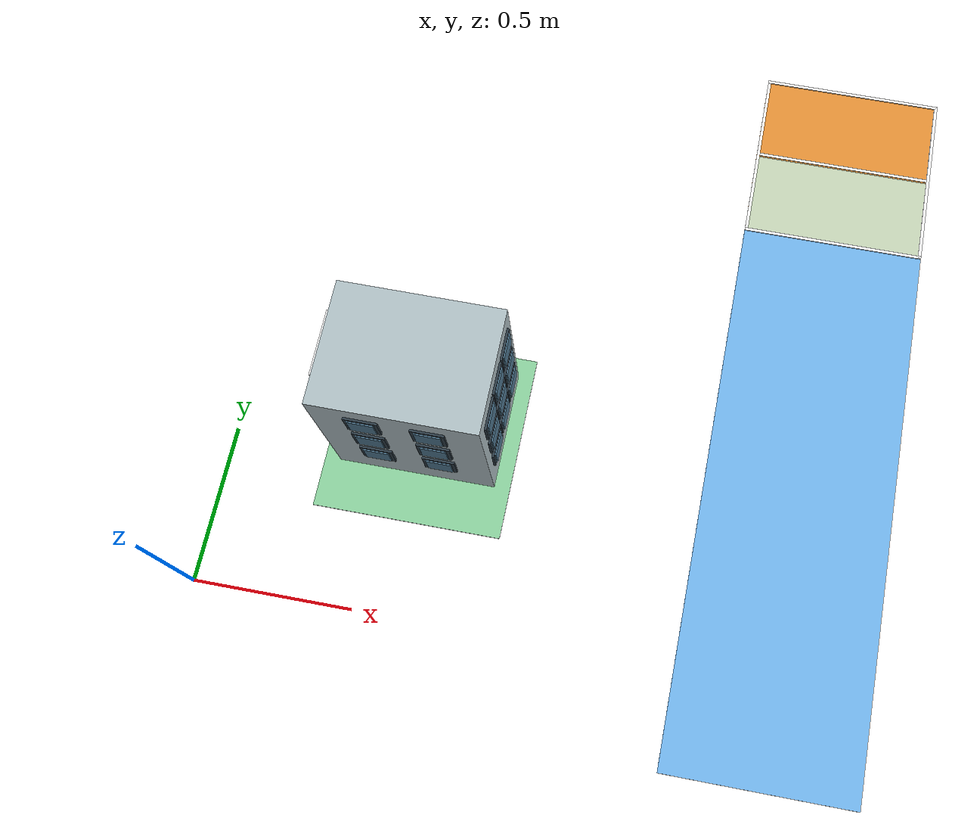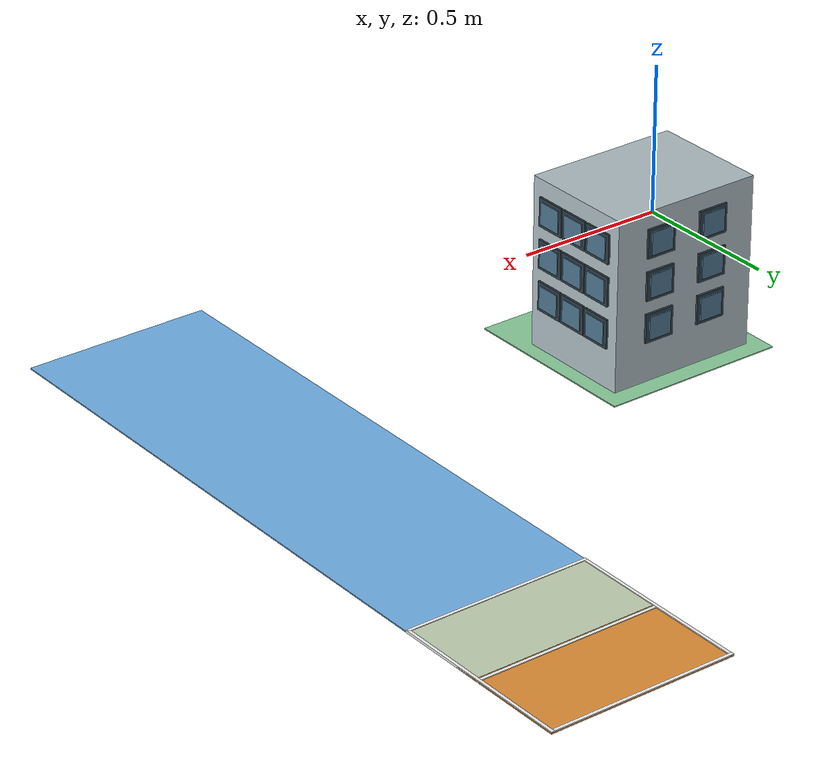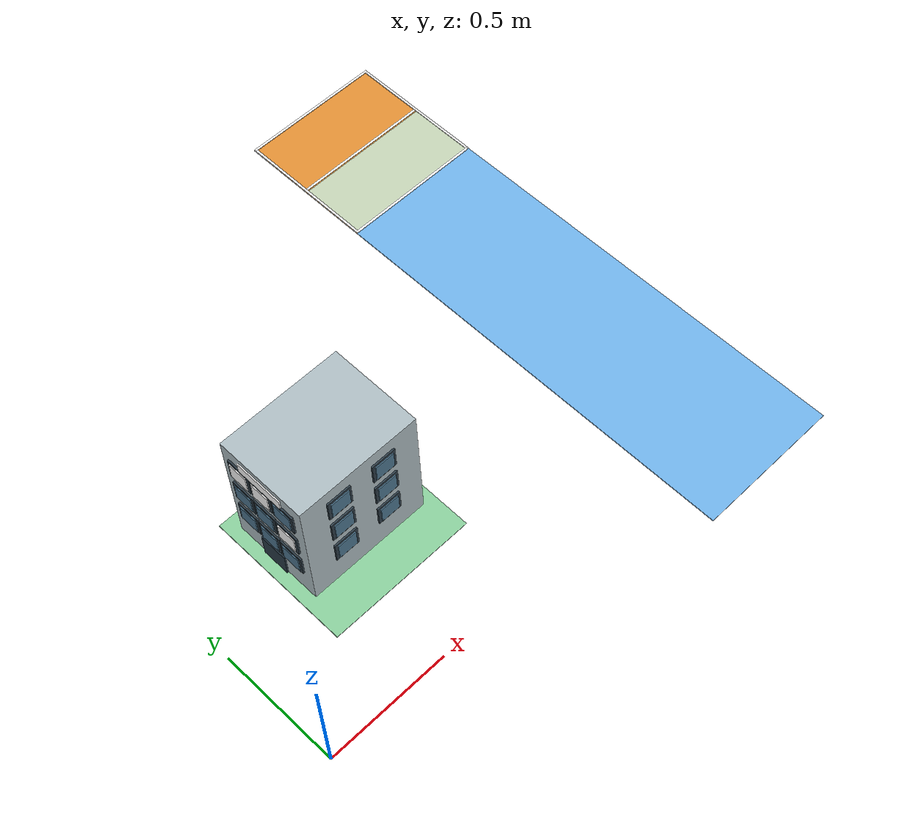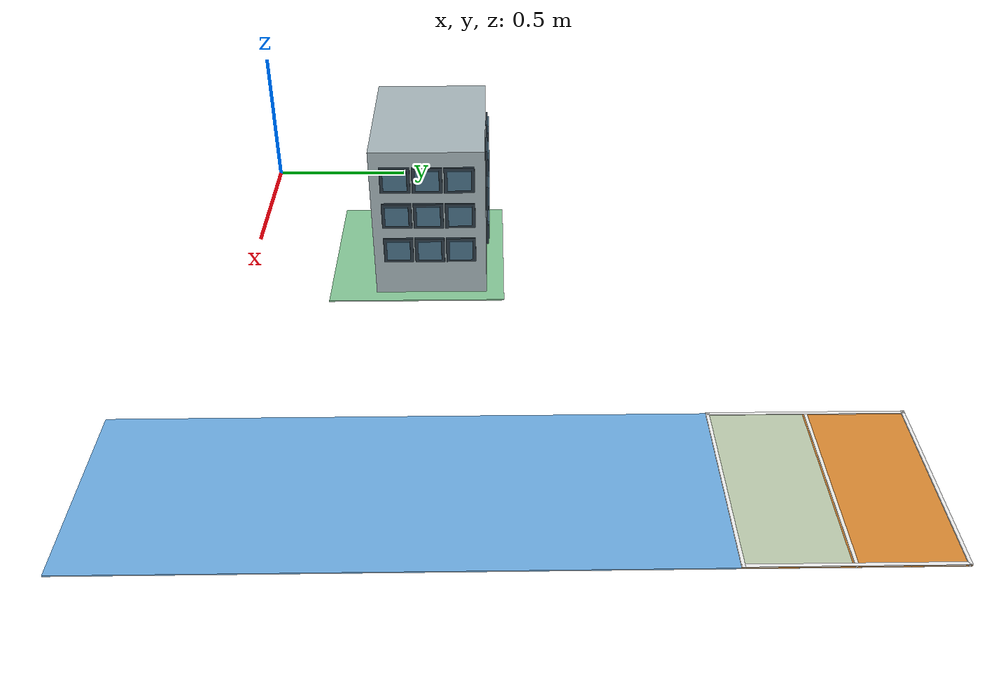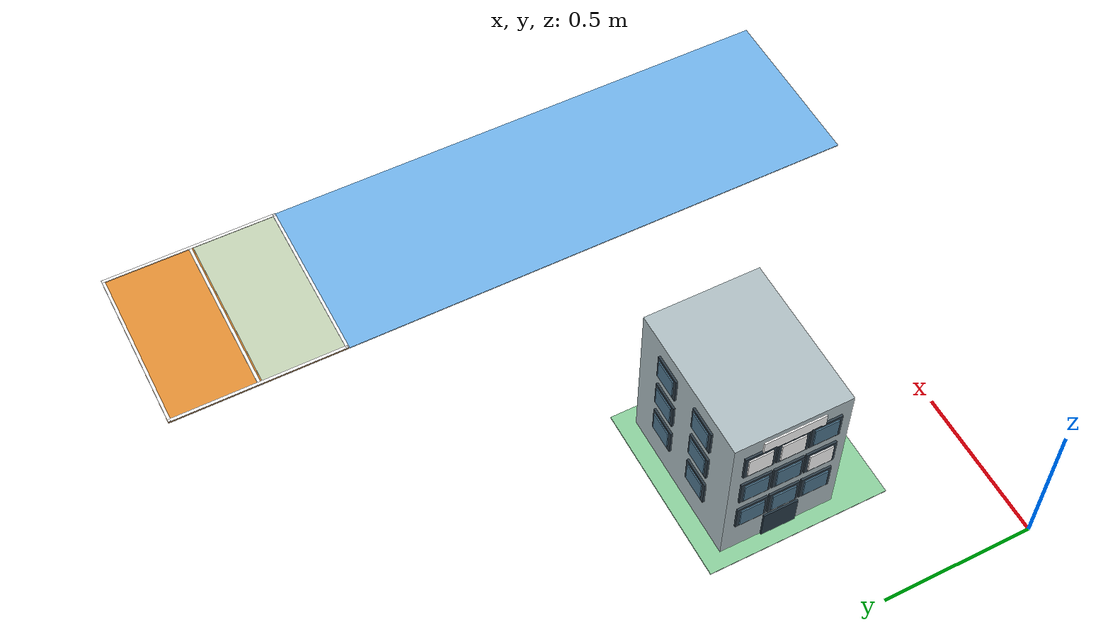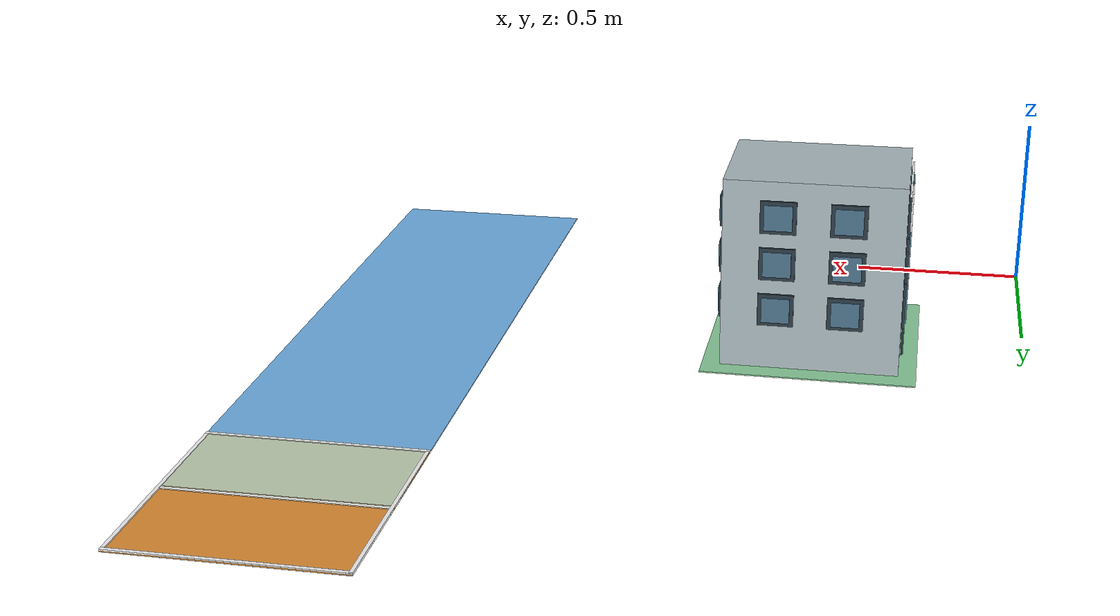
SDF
<sdf version="1.6">
 <world name="sq_community_4p2">
  <include><uri>model://sun</uri></include>
  <model name="sq4_zone_start_finish">
   <static>true</static>
   <pose>1.8000 1.8000 0.0000 0 0 0.00000</pose>
   <link name="surface">
    <visual name="surface_vis">
     <pose>0.0000 0.0000 0.0018 0 0 0.00000</pose>
     <geometry><box><size>0.6000 0.6000 0.0035</size></box></geometry>
     <material>
      <ambient>0.9000 0.5700 0.2100 1.0000</ambient>
      <diffuse>0.9000 0.5700 0.2100 1.0000</diffuse>
     </material>
    </visual>
   </link>
  </model>
  <model name="sq4_zone_building_A">
   <static>true</static>
   <pose>0.6000 0.6000 0.0000 0 0 0.00000</pose>
   <link name="surface">
    <visual name="surface_vis">
     <pose>0.0000 0.0000 0.0018 0 0 0.00000</pose>
     <geometry><box><size>0.6000 0.6000 0.0035</size></box></geometry>
     <material>
      <ambient>0.5500 0.8200 0.6200 1.0000</ambient>
      <diffuse>0.5500 0.8200 0.6200 1.0000</diffuse>
     </material>
    </visual>
   </link>
  </model>
  <model name="sq4_zone_ebike_parking">
   <static>true</static>
   <pose>1.8000 0.6000 0.0000 0 0 0.00000</pose>
   <link name="surface">
    <visual name="surface_vis">
     <pose>0.0000 0.0000 0.0018 0 0 0.00000</pose>
     <geometry><box><size>0.6000 1.8000 0.0035</size></box></geometry>
     <material>
      <ambient>0.4500 0.7100 0.9300 1.0000</ambient>
      <diffuse>0.4500 0.7100 0.9300 1.0000</diffuse>
     </material>
    </visual>
   </link>
  </model>
  <model name="sq4_start_outline_0">
   <static>true</static>
   <pose>1.8000 1.5050 0.0000 0 0 0.00000</pose>
   <link name="surface">
    <visual name="surface_vis">
     <pose>0.0000 0.0000 0.0035 0 0 0.00000</pose>
     <geometry><box><size>0.6000 0.0100 0.0070</size></box></geometry>
     <material>
      <ambient>0.9900 0.9900 0.9900 1.0000</ambient>
      <diffuse>0.9900 0.9900 0.9900 1.0000</diffuse>
     </material>
    </visual>
   </link>
  </model>
  <model name="sq4_start_outline_1">
   <static>true</static>
   <pose>1.8000 2.0950 0.0000 0 0 0.00000</pose>
   <link name="surface">
    <visual name="surface_vis">
     <pose>0.0000 0.0000 0.0035 0 0 0.00000</pose>
     <geometry><box><size>0.6000 0.0100 0.0070</size></box></geometry>
     <material>
      <ambient>0.9900 0.9900 0.9900 1.0000</ambient>
      <diffuse>0.9900 0.9900 0.9900 1.0000</diffuse>
     </material>
    </visual>
   </link>
  </model>
  <model name="sq4_start_outline_2">
   <static>true</static>
   <pose>1.5050 1.8000 0.0000 0 0 0.00000</pose>
   <link name="surface">
    <visual name="surface_vis">
     <pose>0.0000 0.0000 0.0035 0 0 0.00000</pose>
     <geometry><box><size>0.0100 0.6000 0.0070</size></box></geometry>
     <material>
      <ambient>0.9900 0.9900 0.9900 1.0000</ambient>
      <diffuse>0.9900 0.9900 0.9900 1.0000</diffuse>
     </material>
    </visual>
   </link>
  </model>
  <model name="sq4_start_outline_3">
   <static>true</static>
   <pose>2.0950 1.8000 0.0000 0 0 0.00000</pose>
   <link name="surface">
    <visual name="surface_vis">
     <pose>0.0000 0.0000 0.0035 0 0 0.00000</pose>
     <geometry><box><size>0.0100 0.6000 0.0070</size></box></geometry>
     <material>
      <ambient>0.9900 0.9900 0.9900 1.0000</ambient>
      <diffuse>0.9900 0.9900 0.9900 1.0000</diffuse>
     </material>
    </visual>
   </link>
  </model>
  <model name="sq4_start_finish_divider">
   <static>true</static>
   <pose>1.8000 1.8000 0.0000 0 0 0.00000</pose>
   <link name="surface">
    <visual name="surface_vis">
     <pose>0.0000 0.0000 0.0030 0 0 0.00000</pose>
     <geometry><box><size>0.6000 0.0100 0.0060</size></box></geometry>
     <material>
      <ambient>0.9800 0.9800 0.9600 1.0000</ambient>
      <diffuse>0.9800 0.9800 0.9600 1.0000</diffuse>
     </material>
    </visual>
   </link>
  </model>
  <model name="sq4_finish_half">
   <static>true</static>
   <pose>1.8000 1.6500 0.0000 0 0 0.00000</pose>
   <link name="surface">
    <visual name="surface_vis">
     <pose>0.0000 0.0000 0.0025 0 0 0.00000</pose>
     <geometry><box><size>0.5800 0.2800 0.0050</size></box></geometry>
     <material>
      <ambient>0.7800 0.8400 0.7200 1.0000</ambient>
      <diffuse>0.7800 0.8400 0.7200 1.0000</diffuse>
     </material>
    </visual>
   </link>
  </model>
  <model name="sq4_building_A">
   <static>true</static>
   <pose>0.6000 0.6500 0.0000 0 0 0.00000</pose>
   <link name="structure">
    <visual name="structure_vis">
     <pose>0.0000 0.0000 0.2750 0 0 0.00000</pose>
     <geometry><box><size>0.5000 0.3800 0.5500</size></box></geometry>
     <material>
      <ambient>0.6900 0.7500 0.7700 1.0000</ambient>
      <diffuse>0.6900 0.7500 0.7700 1.0000</diffuse>
     </material>
    </visual>
    <collision name="structure_col">
     <pose>0.0000 0.0000 0.2750 0 0 0.00000</pose>
     <geometry><box><size>0.5000 0.3800 0.5500</size></box></geometry>
    </collision>
   </link>
   <link name="nameplate">
    <visual name="nameplate_vis">
     <pose>-0.2560 0.0000 0.5150 0 0 0.00000</pose>
     <geometry><box><size>0.0050 0.2000 0.0450</size></box></geometry>
     <material>
      <script>
       <uri>model://sq_textures/materials/scripts</uri>
       <uri>model://sq_textures/materials/textures</uri>
       <name>SQ_bldg_A</name>
      </script>
      <ambient>1 1 1 1</ambient>
      <diffuse>1 1 1 1</diffuse>
     </material>
    </visual>
   </link>
   <link name="entry_door">
    <visual name="entry_door_vis">
     <pose>-0.2560 0.0000 0.0630 0 0 0.00000</pose>
     <geometry><box><size>0.0060 0.1150 0.1050</size></box></geometry>
     <material>
      <ambient>0.1600 0.2300 0.2800 1.0000</ambient>
      <diffuse>0.1600 0.2300 0.2800 1.0000</diffuse>
     </material>
    </visual>
   </link>
   <link name="window_f1_c1_frame">
    <visual name="window_f1_c1_frame_vis">
     <pose>-0.2550 -0.1056 0.1800 0 0 0.00000</pose>
     <geometry><box><size>0.0070 0.1000 0.0930</size></box></geometry>
     <material>
      <ambient>0.1800 0.2400 0.2800 1.0000</ambient>
      <diffuse>0.1800 0.2400 0.2800 1.0000</diffuse>
     </material>
    </visual>
   </link>
   <link name="window_f1_c1_glass">
    <visual name="window_f1_c1_glass_vis">
     <pose>-0.2590 -0.1056 0.1800 0 0 0.00000</pose>
     <geometry><box><size>0.0070 0.0780 0.0720</size></box></geometry>
     <material>
      <ambient>0.3100 0.4700 0.5700 1.0000</ambient>
      <diffuse>0.3100 0.4700 0.5700 1.0000</diffuse>
     </material>
    </visual>
   </link>
   <link name="window_f1_c2_frame">
    <visual name="window_f1_c2_frame_vis">
     <pose>-0.2550 0.0000 0.1800 0 0 0.00000</pose>
     <geometry><box><size>0.0070 0.1000 0.0930</size></box></geometry>
     <material>
      <ambient>0.1800 0.2400 0.2800 1.0000</ambient>
      <diffuse>0.1800 0.2400 0.2800 1.0000</diffuse>
     </material>
    </visual>
   </link>
   <link name="window_f1_c2_glass">
    <visual name="window_f1_c2_glass_vis">
     <pose>-0.2590 0.0000 0.1800 0 0 0.00000</pose>
     <geometry><box><size>0.0070 0.0780 0.0720</size></box></geometry>
     <material>
      <ambient>0.3100 0.4700 0.5700 1.0000</ambient>
      <diffuse>0.3100 0.4700 0.5700 1.0000</diffuse>
     </material>
    </visual>
   </link>
   <link name="window_f1_c3_frame">
    <visual name="window_f1_c3_frame_vis">
     <pose>-0.2550 0.1056 0.1800 0 0 0.00000</pose>
     <geometry><box><size>0.0070 0.1000 0.0930</size></box></geometry>
     <material>
      <ambient>0.1800 0.2400 0.2800 1.0000</ambient>
      <diffuse>0.1800 0.2400 0.2800 1.0000</diffuse>
     </material>
    </visual>
   </link>
   <link name="window_f1_c3_glass">
    <visual name="window_f1_c3_glass_vis">
     <pose>-0.2590 0.1056 0.1800 0 0 0.00000</pose>
     <geometry><box><size>0.0070 0.0780 0.0720</size></box></geometry>
     <material>
      <ambient>0.3100 0.4700 0.5700 1.0000</ambient>
      <diffuse>0.3100 0.4700 0.5700 1.0000</diffuse>
     </material>
    </visual>
   </link>
   <link name="window_f2_c1_frame">
    <visual name="window_f2_c1_frame_vis">
     <pose>-0.2550 -0.1056 0.3150 0 0 0.00000</pose>
     <geometry><box><size>0.0070 0.1000 0.0930</size></box></geometry>
     <material>
      <ambient>0.1800 0.2400 0.2800 1.0000</ambient>
      <diffuse>0.1800 0.2400 0.2800 1.0000</diffuse>
     </material>
    </visual>
   </link>
   <link name="window_f2_c1_glass">
    <visual name="window_f2_c1_glass_vis">
     <pose>-0.2590 -0.1056 0.3150 0 0 0.00000</pose>
     <geometry><box><size>0.0070 0.0780 0.0720</size></box></geometry>
     <material>
      <script>
       <uri>model://sq_textures/materials/scripts</uri>
       <uri>model://sq_textures/materials/textures</uri>
       <name>SQ_win_fire</name>
      </script>
      <ambient>1 1 1 1</ambient>
      <diffuse>1 1 1 1</diffuse>
     </material>
    </visual>
   </link>
   <link name="window_f2_c2_frame">
    <visual name="window_f2_c2_frame_vis">
     <pose>-0.2550 0.0000 0.3150 0 0 0.00000</pose>
     <geometry><box><size>0.0070 0.1000 0.0930</size></box></geometry>
     <material>
      <ambient>0.1800 0.2400 0.2800 1.0000</ambient>
      <diffuse>0.1800 0.2400 0.2800 1.0000</diffuse>
     </material>
    </visual>
   </link>
   <link name="window_f2_c2_glass">
    <visual name="window_f2_c2_glass_vis">
     <pose>-0.2590 0.0000 0.3150 0 0 0.00000</pose>
     <geometry><box><size>0.0070 0.0780 0.0720</size></box></geometry>
     <material>
      <ambient>0.3100 0.4700 0.5700 1.0000</ambient>
      <diffuse>0.3100 0.4700 0.5700 1.0000</diffuse>
     </material>
    </visual>
   </link>
   <link name="window_f2_c3_frame">
    <visual name="window_f2_c3_frame_vis">
     <pose>-0.2550 0.1056 0.3150 0 0 0.00000</pose>
     <geometry><box><size>0.0070 0.1000 0.0930</size></box></geometry>
     <material>
      <ambient>0.1800 0.2400 0.2800 1.0000</ambient>
      <diffuse>0.1800 0.2400 0.2800 1.0000</diffuse>
     </material>
    </visual>
   </link>
   <link name="window_f2_c3_glass">
    <visual name="window_f2_c3_glass_vis">
     <pose>-0.2590 0.1056 0.3150 0 0 0.00000</pose>
     <geometry><box><size>0.0070 0.0780 0.0720</size></box></geometry>
     <material>
      <ambient>0.3100 0.4700 0.5700 1.0000</ambient>
      <diffuse>0.3100 0.4700 0.5700 1.0000</diffuse>
     </material>
    </visual>
   </link>
   <link name="window_f3_c1_frame">
    <visual name="window_f3_c1_frame_vis">
     <pose>-0.2550 -0.1056 0.4500 0 0 0.00000</pose>
     <geometry><box><size>0.0070 0.1000 0.0930</size></box></geometry>
     <material>
      <ambient>0.1800 0.2400 0.2800 1.0000</ambient>
      <diffuse>0.1800 0.2400 0.2800 1.0000</diffuse>
     </material>
    </visual>
   </link>
   <link name="window_f3_c1_glass">
    <visual name="window_f3_c1_glass_vis">
     <pose>-0.2590 -0.1056 0.4500 0 0 0.00000</pose>
     <geometry><box><size>0.0070 0.0780 0.0720</size></box></geometry>
     <material>
      <ambient>0.3100 0.4700 0.5700 1.0000</ambient>
      <diffuse>0.3100 0.4700 0.5700 1.0000</diffuse>
     </material>
    </visual>
   </link>
   <link name="window_f3_c2_frame">
    <visual name="window_f3_c2_frame_vis">
     <pose>-0.2550 0.0000 0.4500 0 0 0.00000</pose>
     <geometry><box><size>0.0070 0.1000 0.0930</size></box></geometry>
     <material>
      <ambient>0.1800 0.2400 0.2800 1.0000</ambient>
      <diffuse>0.1800 0.2400 0.2800 1.0000</diffuse>
     </material>
    </visual>
   </link>
   <link name="window_f3_c2_glass">
    <visual name="window_f3_c2_glass_vis">
     <pose>-0.2590 0.0000 0.4500 0 0 0.00000</pose>
     <geometry><box><size>0.0070 0.0780 0.0720</size></box></geometry>
     <material>
      <script>
       <uri>model://sq_textures/materials/scripts</uri>
       <uri>model://sq_textures/materials/textures</uri>
       <name>SQ_win_fire</name>
      </script>
      <ambient>1 1 1 1</ambient>
      <diffuse>1 1 1 1</diffuse>
     </material>
    </visual>
   </link>
   <link name="window_f3_c3_frame">
    <visual name="window_f3_c3_frame_vis">
     <pose>-0.2550 0.1056 0.4500 0 0 0.00000</pose>
     <geometry><box><size>0.0070 0.1000 0.0930</size></box></geometry>
     <material>
      <ambient>0.1800 0.2400 0.2800 1.0000</ambient>
      <diffuse>0.1800 0.2400 0.2800 1.0000</diffuse>
     </material>
    </visual>
   </link>
   <link name="window_f3_c3_glass">
    <visual name="window_f3_c3_glass_vis">
     <pose>-0.2590 0.1056 0.4500 0 0 0.00000</pose>
     <geometry><box><size>0.0070 0.0780 0.0720</size></box></geometry>
     <material>
      <script>
       <uri>model://sq_textures/materials/scripts</uri>
       <uri>model://sq_textures/materials/textures</uri>
       <name>SQ_win_fire</name>
      </script>
      <ambient>1 1 1 1</ambient>
      <diffuse>1 1 1 1</diffuse>
     </material>
    </visual>
   </link>
   <link name="side_north_f1_c1_frame">
    <visual name="side_north_f1_c1_frame_vis">
     <pose>-0.0962 0.1950 0.1800 0 0 0.00000</pose>
     <geometry><box><size>0.1000 0.0070 0.0930</size></box></geometry>
     <material>
      <ambient>0.1800 0.2400 0.2800 1.0000</ambient>
      <diffuse>0.1800 0.2400 0.2800 1.0000</diffuse>
     </material>
    </visual>
   </link>
   <link name="side_north_f1_c1_glass">
    <visual name="side_north_f1_c1_glass_vis">
     <pose>-0.0962 0.1990 0.1800 0 0 0.00000</pose>
     <geometry><box><size>0.0780 0.0070 0.0720</size></box></geometry>
     <material>
      <ambient>0.3100 0.4700 0.5700 1.0000</ambient>
      <diffuse>0.3100 0.4700 0.5700 1.0000</diffuse>
     </material>
    </visual>
   </link>
   <link name="side_north_f1_c2_frame">
    <visual name="side_north_f1_c2_frame_vis">
     <pose>0.0962 0.1950 0.1800 0 0 0.00000</pose>
     <geometry><box><size>0.1000 0.0070 0.0930</size></box></geometry>
     <material>
      <ambient>0.1800 0.2400 0.2800 1.0000</ambient>
      <diffuse>0.1800 0.2400 0.2800 1.0000</diffuse>
     </material>
    </visual>
   </link>
   <link name="side_north_f1_c2_glass">
    <visual name="side_north_f1_c2_glass_vis">
     <pose>0.0962 0.1990 0.1800 0 0 0.00000</pose>
     <geometry><box><size>0.0780 0.0070 0.0720</size></box></geometry>
     <material>
      <ambient>0.3100 0.4700 0.5700 1.0000</ambient>
      <diffuse>0.3100 0.4700 0.5700 1.0000</diffuse>
     </material>
    </visual>
   </link>
   <link name="side_north_f2_c1_frame">
    <visual name="side_north_f2_c1_frame_vis">
     <pose>-0.0962 0.1950 0.3150 0 0 0.00000</pose>
     <geometry><box><size>0.1000 0.0070 0.0930</size></box></geometry>
     <material>
      <ambient>0.1800 0.2400 0.2800 1.0000</ambient>
      <diffuse>0.1800 0.2400 0.2800 1.0000</diffuse>
     </material>
    </visual>
   </link>
   <link name="side_north_f2_c1_glass">
    <visual name="side_north_f2_c1_glass_vis">
     <pose>-0.0962 0.1990 0.3150 0 0 0.00000</pose>
     <geometry><box><size>0.0780 0.0070 0.0720</size></box></geometry>
     <material>
      <ambient>0.3100 0.4700 0.5700 1.0000</ambient>
      <diffuse>0.3100 0.4700 0.5700 1.0000</diffuse>
     </material>
    </visual>
   </link>
   <link name="side_north_f2_c2_frame">
    <visual name="side_north_f2_c2_frame_vis">
     <pose>0.0962 0.1950 0.3150 0 0 0.00000</pose>
     <geometry><box><size>0.1000 0.0070 0.0930</size></box></geometry>
     <material>
      <ambient>0.1800 0.2400 0.2800 1.0000</ambient>
      <diffuse>0.1800 0.2400 0.2800 1.0000</diffuse>
     </material>
    </visual>
   </link>
   <link name="side_north_f2_c2_glass">
    <visual name="side_north_f2_c2_glass_vis">
     <pose>0.0962 0.1990 0.3150 0 0 0.00000</pose>
     <geometry><box><size>0.0780 0.0070 0.0720</size></box></geometry>
     <material>
      <ambient>0.3100 0.4700 0.5700 1.0000</ambient>
      <diffuse>0.3100 0.4700 0.5700 1.0000</diffuse>
     </material>
    </visual>
   </link>
   <link name="side_north_f3_c1_frame">
    <visual name="side_north_f3_c1_frame_vis">
     <pose>-0.0962 0.1950 0.4500 0 0 0.00000</pose>
     <geometry><box><size>0.1000 0.0070 0.0930</size></box></geometry>
     <material>
      <ambient>0.1800 0.2400 0.2800 1.0000</ambient>
      <diffuse>0.1800 0.2400 0.2800 1.0000</diffuse>
     </material>
    </visual>
   </link>
   <link name="side_north_f3_c1_glass">
    <visual name="side_north_f3_c1_glass_vis">
     <pose>-0.0962 0.1990 0.4500 0 0 0.00000</pose>
     <geometry><box><size>0.0780 0.0070 0.0720</size></box></geometry>
     <material>
      <ambient>0.3100 0.4700 0.5700 1.0000</ambient>
      <diffuse>0.3100 0.4700 0.5700 1.0000</diffuse>
     </material>
    </visual>
   </link>
   <link name="side_north_f3_c2_frame">
    <visual name="side_north_f3_c2_frame_vis">
     <pose>0.0962 0.1950 0.4500 0 0 0.00000</pose>
     <geometry><box><size>0.1000 0.0070 0.0930</size></box></geometry>
     <material>
      <ambient>0.1800 0.2400 0.2800 1.0000</ambient>
      <diffuse>0.1800 0.2400 0.2800 1.0000</diffuse>
     </material>
    </visual>
   </link>
   <link name="side_north_f3_c2_glass">
    <visual name="side_north_f3_c2_glass_vis">
     <pose>0.0962 0.1990 0.4500 0 0 0.00000</pose>
     <geometry><box><size>0.0780 0.0070 0.0720</size></box></geometry>
     <material>
      <ambient>0.3100 0.4700 0.5700 1.0000</ambient>
      <diffuse>0.3100 0.4700 0.5700 1.0000</diffuse>
     </material>
    </visual>
   </link>
   <link name="side_south_f1_c1_frame">
    <visual name="side_south_f1_c1_frame_vis">
     <pose>-0.0962 -0.1950 0.1800 0 0 0.00000</pose>
     <geometry><box><size>0.1000 0.0070 0.0930</size></box></geometry>
     <material>
      <ambient>0.1800 0.2400 0.2800 1.0000</ambient>
      <diffuse>0.1800 0.2400 0.2800 1.0000</diffuse>
     </material>
    </visual>
   </link>
   <link name="side_south_f1_c1_glass">
    <visual name="side_south_f1_c1_glass_vis">
     <pose>-0.0962 -0.1990 0.1800 0 0 0.00000</pose>
     <geometry><box><size>0.0780 0.0070 0.0720</size></box></geometry>
     <material>
      <ambient>0.3100 0.4700 0.5700 1.0000</ambient>
      <diffuse>0.3100 0.4700 0.5700 1.0000</diffuse>
     </material>
    </visual>
   </link>
   <link name="side_south_f1_c2_frame">
    <visual name="side_south_f1_c2_frame_vis">
     <pose>0.0962 -0.1950 0.1800 0 0 0.00000</pose>
     <geometry><box><size>0.1000 0.0070 0.0930</size></box></geometry>
     <material>
      <ambient>0.1800 0.2400 0.2800 1.0000</ambient>
      <diffuse>0.1800 0.2400 0.2800 1.0000</diffuse>
     </material>
    </visual>
   </link>
   <link name="side_south_f1_c2_glass">
    <visual name="side_south_f1_c2_glass_vis">
     <pose>0.0962 -0.1990 0.1800 0 0 0.00000</pose>
     <geometry><box><size>0.0780 0.0070 0.0720</size></box></geometry>
     <material>
      <ambient>0.3100 0.4700 0.5700 1.0000</ambient>
      <diffuse>0.3100 0.4700 0.5700 1.0000</diffuse>
     </material>
    </visual>
   </link>
   <link name="side_south_f2_c1_frame">
    <visual name="side_south_f2_c1_frame_vis">
     <pose>-0.0962 -0.1950 0.3150 0 0 0.00000</pose>
     <geometry><box><size>0.1000 0.0070 0.0930</size></box></geometry>
     <material>
      <ambient>0.1800 0.2400 0.2800 1.0000</ambient>
      <diffuse>0.1800 0.2400 0.2800 1.0000</diffuse>
     </material>
    </visual>
   </link>
   <link name="side_south_f2_c1_glass">
    <visual name="side_south_f2_c1_glass_vis">
     <pose>-0.0962 -0.1990 0.3150 0 0 0.00000</pose>
     <geometry><box><size>0.0780 0.0070 0.0720</size></box></geometry>
     <material>
      <ambient>0.3100 0.4700 0.5700 1.0000</ambient>
      <diffuse>0.3100 0.4700 0.5700 1.0000</diffuse>
     </material>
    </visual>
   </link>
   <link name="side_south_f2_c2_frame">
    <visual name="side_south_f2_c2_frame_vis">
     <pose>0.0962 -0.1950 0.3150 0 0 0.00000</pose>
     <geometry><box><size>0.1000 0.0070 0.0930</size></box></geometry>
     <material>
      <ambient>0.1800 0.2400 0.2800 1.0000</ambient>
      <diffuse>0.1800 0.2400 0.2800 1.0000</diffuse>
     </material>
    </visual>
   </link>
   <link name="side_south_f2_c2_glass">
    <visual name="side_south_f2_c2_glass_vis">
     <pose>0.0962 -0.1990 0.3150 0 0 0.00000</pose>
     <geometry><box><size>0.0780 0.0070 0.0720</size></box></geometry>
     <material>
      <ambient>0.3100 0.4700 0.5700 1.0000</ambient>
      <diffuse>0.3100 0.4700 0.5700 1.0000</diffuse>
     </material>
    </visual>
   </link>
   <link name="side_south_f3_c1_frame">
    <visual name="side_south_f3_c1_frame_vis">
     <pose>-0.0962 -0.1950 0.4500 0 0 0.00000</pose>
     <geometry><box><size>0.1000 0.0070 0.0930</size></box></geometry>
     <material>
      <ambient>0.1800 0.2400 0.2800 1.0000</ambient>
      <diffuse>0.1800 0.2400 0.2800 1.0000</diffuse>
     </material>
    </visual>
   </link>
   <link name="side_south_f3_c1_glass">
    <visual name="side_south_f3_c1_glass_vis">
     <pose>-0.0962 -0.1990 0.4500 0 0 0.00000</pose>
     <geometry><box><size>0.0780 0.0070 0.0720</size></box></geometry>
     <material>
      <ambient>0.3100 0.4700 0.5700 1.0000</ambient>
      <diffuse>0.3100 0.4700 0.5700 1.0000</diffuse>
     </material>
    </visual>
   </link>
   <link name="side_south_f3_c2_frame">
    <visual name="side_south_f3_c2_frame_vis">
     <pose>0.0962 -0.1950 0.4500 0 0 0.00000</pose>
     <geometry><box><size>0.1000 0.0070 0.0930</size></box></geometry>
     <material>
      <ambient>0.1800 0.2400 0.2800 1.0000</ambient>
      <diffuse>0.1800 0.2400 0.2800 1.0000</diffuse>
     </material>
    </visual>
   </link>
   <link name="side_south_f3_c2_glass">
    <visual name="side_south_f3_c2_glass_vis">
     <pose>0.0962 -0.1990 0.4500 0 0 0.00000</pose>
     <geometry><box><size>0.0780 0.0070 0.0720</size></box></geometry>
     <material>
      <ambient>0.3100 0.4700 0.5700 1.0000</ambient>
      <diffuse>0.3100 0.4700 0.5700 1.0000</diffuse>
     </material>
    </visual>
   </link>
   <link name="rear_f1_c1_frame">
    <visual name="rear_f1_c1_frame_vis">
     <pose>0.2550 -0.1056 0.1800 0 0 0.00000</pose>
     <geometry><box><size>0.0070 0.1000 0.0930</size></box></geometry>
     <material>
      <ambient>0.1800 0.2400 0.2800 1.0000</ambient>
      <diffuse>0.1800 0.2400 0.2800 1.0000</diffuse>
     </material>
    </visual>
   </link>
   <link name="rear_f1_c1_glass">
    <visual name="rear_f1_c1_glass_vis">
     <pose>0.2590 -0.1056 0.1800 0 0 0.00000</pose>
     <geometry><box><size>0.0070 0.0780 0.0720</size></box></geometry>
     <material>
      <ambient>0.3100 0.4700 0.5700 1.0000</ambient>
      <diffuse>0.3100 0.4700 0.5700 1.0000</diffuse>
     </material>
    </visual>
   </link>
   <link name="rear_f1_c2_frame">
    <visual name="rear_f1_c2_frame_vis">
     <pose>0.2550 0.0000 0.1800 0 0 0.00000</pose>
     <geometry><box><size>0.0070 0.1000 0.0930</size></box></geometry>
     <material>
      <ambient>0.1800 0.2400 0.2800 1.0000</ambient>
      <diffuse>0.1800 0.2400 0.2800 1.0000</diffuse>
     </material>
    </visual>
   </link>
   <link name="rear_f1_c2_glass">
    <visual name="rear_f1_c2_glass_vis">
     <pose>0.2590 0.0000 0.1800 0 0 0.00000</pose>
     <geometry><box><size>0.0070 0.0780 0.0720</size></box></geometry>
     <material>
      <ambient>0.3100 0.4700 0.5700 1.0000</ambient>
      <diffuse>0.3100 0.4700 0.5700 1.0000</diffuse>
     </material>
    </visual>
   </link>
   <link name="rear_f1_c3_frame">
    <visual name="rear_f1_c3_frame_vis">
     <pose>0.2550 0.1056 0.1800 0 0 0.00000</pose>
     <geometry><box><size>0.0070 0.1000 0.0930</size></box></geometry>
     <material>
      <ambient>0.1800 0.2400 0.2800 1.0000</ambient>
      <diffuse>0.1800 0.2400 0.2800 1.0000</diffuse>
     </material>
    </visual>
   </link>
   <link name="rear_f1_c3_glass">
    <visual name="rear_f1_c3_glass_vis">
     <pose>0.2590 0.1056 0.1800 0 0 0.00000</pose>
     <geometry><box><size>0.0070 0.0780 0.0720</size></box></geometry>
     <material>
      <ambient>0.3100 0.4700 0.5700 1.0000</ambient>
      <diffuse>0.3100 0.4700 0.5700 1.0000</diffuse>
     </material>
    </visual>
   </link>
   <link name="rear_f2_c1_frame">
    <visual name="rear_f2_c1_frame_vis">
     <pose>0.2550 -0.1056 0.3150 0 0 0.00000</pose>
     <geometry><box><size>0.0070 0.1000 0.0930</size></box></geometry>
     <material>
      <ambient>0.1800 0.2400 0.2800 1.0000</ambient>
      <diffuse>0.1800 0.2400 0.2800 1.0000</diffuse>
     </material>
    </visual>
   </link>
   <link name="rear_f2_c1_glass">
    <visual name="rear_f2_c1_glass_vis">
     <pose>0.2590 -0.1056 0.3150 0 0 0.00000</pose>
     <geometry><box><size>0.0070 0.0780 0.0720</size></box></geometry>
     <material>
      <ambient>0.3100 0.4700 0.5700 1.0000</ambient>
      <diffuse>0.3100 0.4700 0.5700 1.0000</diffuse>
     </material>
    </visual>
   </link>
   <link name="rear_f2_c2_frame">
    <visual name="rear_f2_c2_frame_vis">
     <pose>0.2550 0.0000 0.3150 0 0 0.00000</pose>
     <geometry><box><size>0.0070 0.1000 0.0930</size></box></geometry>
     <material>
      <ambient>0.1800 0.2400 0.2800 1.0000</ambient>
      <diffuse>0.1800 0.2400 0.2800 1.0000</diffuse>
     </material>
    </visual>
   </link>
   <link name="rear_f2_c2_glass">
    <visual name="rear_f2_c2_glass_vis">
     <pose>0.2590 0.0000 0.3150 0 0 0.00000</pose>
     <geometry><box><size>0.0070 0.0780 0.0720</size></box></geometry>
     <material>
      <ambient>0.3100 0.4700 0.5700 1.0000</ambient>
      <diffuse>0.3100 0.4700 0.5700 1.0000</diffuse>
     </material>
    </visual>
   </link>
   <link name="rear_f2_c3_frame">
    <visual name="rear_f2_c3_frame_vis">
     <pose>0.2550 0.1056 0.3150 0 0 0.00000</pose>
     <geometry><box><size>0.0070 0.1000 0.0930</size></box></geometry>
     <material>
      <ambient>0.1800 0.2400 0.2800 1.0000</ambient>
      <diffuse>0.1800 0.2400 0.2800 1.0000</diffuse>
     </material>
    </visual>
   </link>
   <link name="rear_f2_c3_glass">
    <visual name="rear_f2_c3_glass_vis">
     <pose>0.2590 0.1056 0.3150 0 0 0.00000</pose>
     <geometry><box><size>0.0070 0.0780 0.0720</size></box></geometry>
     <material>
      <ambient>0.3100 0.4700 0.5700 1.0000</ambient>
      <diffuse>0.3100 0.4700 0.5700 1.0000</diffuse>
     </material>
    </visual>
   </link>
   <link name="rear_f3_c1_frame">
    <visual name="rear_f3_c1_frame_vis">
     <pose>0.2550 -0.1056 0.4500 0 0 0.00000</pose>
     <geometry><box><size>0.0070 0.1000 0.0930</size></box></geometry>
     <material>
      <ambient>0.1800 0.2400 0.2800 1.0000</ambient>
      <diffuse>0.1800 0.2400 0.2800 1.0000</diffuse>
     </material>
    </visual>
   </link>
   <link name="rear_f3_c1_glass">
    <visual name="rear_f3_c1_glass_vis">
     <pose>0.2590 -0.1056 0.4500 0 0 0.00000</pose>
     <geometry><box><size>0.0070 0.0780 0.0720</size></box></geometry>
     <material>
      <ambient>0.3100 0.4700 0.5700 1.0000</ambient>
      <diffuse>0.3100 0.4700 0.5700 1.0000</diffuse>
     </material>
    </visual>
   </link>
   <link name="rear_f3_c2_frame">
    <visual name="rear_f3_c2_frame_vis">
     <pose>0.2550 0.0000 0.4500 0 0 0.00000</pose>
     <geometry><box><size>0.0070 0.1000 0.0930</size></box></geometry>
     <material>
      <ambient>0.1800 0.2400 0.2800 1.0000</ambient>
      <diffuse>0.1800 0.2400 0.2800 1.0000</diffuse>
     </material>
    </visual>
   </link>
   <link name="rear_f3_c2_glass">
    <visual name="rear_f3_c2_glass_vis">
     <pose>0.2590 0.0000 0.4500 0 0 0.00000</pose>
     <geometry><box><size>0.0070 0.0780 0.0720</size></box></geometry>
     <material>
      <ambient>0.3100 0.4700 0.5700 1.0000</ambient>
      <diffuse>0.3100 0.4700 0.5700 1.0000</diffuse>
     </material>
    </visual>
   </link>
   <link name="rear_f3_c3_frame">
    <visual name="rear_f3_c3_frame_vis">
     <pose>0.2550 0.1056 0.4500 0 0 0.00000</pose>
     <geometry><box><size>0.0070 0.1000 0.0930</size></box></geometry>
     <material>
      <ambient>0.1800 0.2400 0.2800 1.0000</ambient>
      <diffuse>0.1800 0.2400 0.2800 1.0000</diffuse>
     </material>
    </visual>
   </link>
   <link name="rear_f3_c3_glass">
    <visual name="rear_f3_c3_glass_vis">
     <pose>0.2590 0.1056 0.4500 0 0 0.00000</pose>
     <geometry><box><size>0.0070 0.0780 0.0720</size></box></geometry>
     <material>
      <ambient>0.3100 0.4700 0.5700 1.0000</ambient>
      <diffuse>0.3100 0.4700 0.5700 1.0000</diffuse>
     </material>
    </visual>
   </link>
  </model>
 </world>
</sdf>
